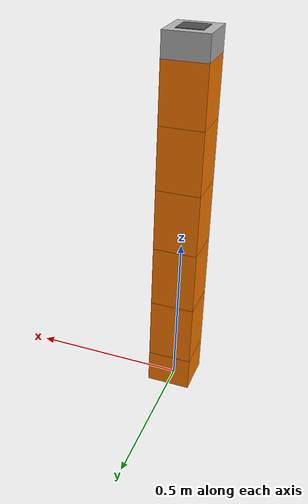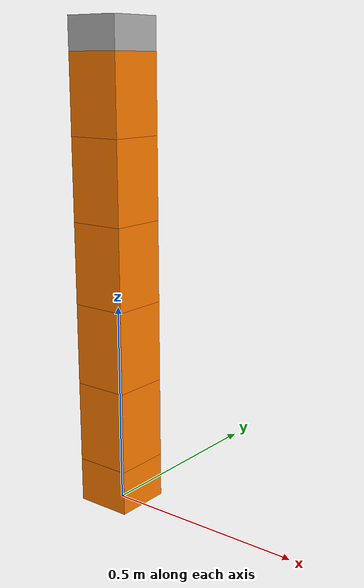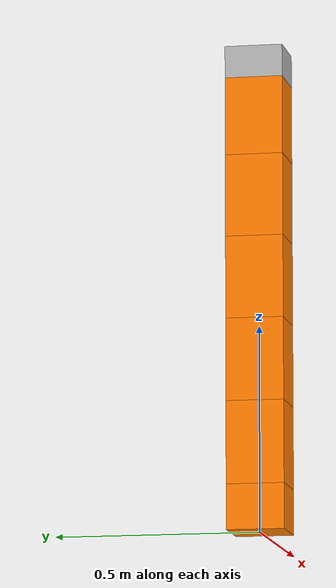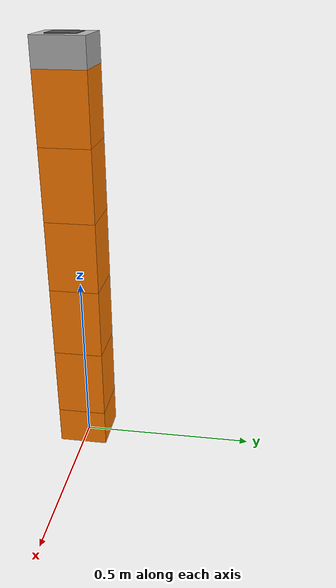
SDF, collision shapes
<?xml version="1.0" ?>
<sdf version='1.6'>
  <model name='KukaModel'>
    <link name='lwr_base_link'>
      <pose frame=''>0 0 0.0 0 -0 0</pose>
      <inertial>
        <pose frame='lwr_base_link'>0 0 0.055 0 -0 0</pose>
        <mass>2</mass>
        <inertia>
          <ixx>0.00381667</ixx>
          <ixy>0</ixy>
          <ixz>0</ixz>
          <iyy>0.0036</iyy>
          <iyz>0</iyz>
          <izz>0.00381667</izz>
        </inertia>
      </inertial>
      <collision name='lwr_base_link_collision'>
        <pose frame=''>0 0 0.055 0 -0 0</pose>
        <geometry>
          <box>
            <size>0.14 0.14 0.11</size>
          </box>
        </geometry>
        <surface>
          <contact>
            <ode/>
          </contact>
          <friction>
            <ode/>
          </friction>
        </surface>
      </collision>
      <visual name='lwr_base_link_visual'>
        <pose frame=''>0 0 0 0 0 -3.14159</pose>
        <geometry>
          <mesh>
            <scale>1 1 1</scale>
            <uri>file://KukaModel/meshes/lwr4plus/visual/base.STL</uri>
          </mesh>
        </geometry>
        <material>
          <ambient>1.0 0.487 0 1.0</ambient>
        </material>
      </visual>
      <gravity>1</gravity>
      <velocity_decay/>
      <gravity>1</gravity>
    </link>
    <joint name="fixed_to_ground" type="revolute">
        <parent>world</parent>
        <child>lwr_base_link</child>
        <axis>
          <limit>
            <lower>0</lower>
            <upper>0</upper>
          </limit>
          <xyz>0 0 1</xyz>
        </axis>
      </joint>
    <link name='lwr_1_link'>
      <pose frame=''>0 0 0.11 0 -0 0</pose>
      <inertial>
        <pose frame='lwr_1_link'>0 -0.06 0.13 0 -0 0</pose>
        <mass>2.35</mass>
        <inertia>
          <ixx>0.0160583</ixx>
          <ixy>0</ixy>
          <ixz>0</ixz>
          <iyy>0.003525</iyy>
          <iyz>0</iyz>
          <izz>0.0139433</izz>
        </inertia>
      </inertial>
      <collision name='lwr_1_link_collision'>
        <pose frame=''>0 0 0.10025 0 -0 0</pose>
        <geometry>
          <box>
            <size>0.14 0.14 0.2005</size>
          </box>
        </geometry>
        <surface>
          <contact>
            <ode/>
          </contact>
          <friction>
            <ode/>
          </friction>
        </surface>
      </collision>
      <visual name='lwr_1_link_visual'>
        <pose frame=''>0 0 -0.008 0 -0 -3.14159</pose>
        <geometry>
          <mesh>
            <scale>1 1 1</scale>
            <uri>file://KukaModel/meshes/lwr4plus/visual/link_1.STL</uri>
          </mesh>
        </geometry>
        <material>
          <ambient>1.0 0.487 0 1.0</ambient>
        </material>
      </visual>
      <gravity>1</gravity>
      <velocity_decay/>
      <gravity>1</gravity>
    </link>
    <joint name='lwr_a1_joint' type='revolute'>
      <child>lwr_1_link</child>
      <parent>lwr_base_link</parent>
      <axis>
        <xyz>0 0 1</xyz>
        <limit>
          <lower>-2.96706</lower>
          <upper>2.96706</upper>
          <effort>15</effort>
          <velocity>3.91986</velocity>
        </limit>
        <dynamics>
          <damping>2.0</damping>
          <friction>0.2</friction>
          <spring_reference>0</spring_reference>
          <spring_stiffness>0</spring_stiffness>
        </dynamics>
        <use_parent_model_frame>1</use_parent_model_frame>
      </axis>
      <physics>
        <ode>
          <implicit_spring_damper>1</implicit_spring_damper>
          <bounce>0</bounce>
          <limit>
            <erp>0.8</erp>
          </limit>
        </ode>
      </physics>
    </joint>
    <link name='lwr_2_link'>
      <pose frame=''>0 0 0.3105 0 -0 0</pose>
      <inertial>
        <pose frame='lwr_2_link'>0 0.06 0.07 0 -0 0</pose>
        <mass>2.35</mass>
        <inertia>
          <ixx>0.0160583</ixx>
          <ixy>0</ixy>
          <ixz>0</ixz>
          <iyy>0.003525</iyy>
          <iyz>0</iyz>
          <izz>0.0139433</izz>
        </inertia>
      </inertial>
      <collision name='lwr_2_link_collision'>
        <pose frame=''>0 0 0.1 0 -0 0</pose>
        <geometry>
          <box>
            <size>0.14 0.14 0.2</size>
          </box>
        </geometry>
        <surface>
          <contact>
            <ode/>
          </contact>
          <friction>
            <ode/>
          </friction>
        </surface>
      </collision>
      <visual name='lwr_2_link_visual'>
        <pose frame=''>0 0 0 0 -0 -3.14159</pose>
        <geometry>
          <mesh>
            <scale>1 1 1</scale>
            <uri>file://KukaModel/meshes/lwr4plus/visual/link_2.STL</uri>
          </mesh>
        </geometry>
        <material>
          <ambient>1.0 0.487 0 1.0</ambient>
        </material>
      </visual>
      <gravity>1</gravity>
      <velocity_decay/>
      <gravity>1</gravity>
    </link>
    <joint name='lwr_a2_joint' type='revolute'>
      <child>lwr_2_link</child>
      <parent>lwr_1_link</parent>
      <axis>
        <xyz>0 -1 0</xyz>
        <limit>
          <lower>-2.0944</lower>
          <upper>2.0944</upper>
          <effort>13</effort>
          <velocity>2.91986</velocity>
        </limit>
        <dynamics>
          <damping>2.0</damping>
          <friction>0.2</friction>
          <spring_reference>0</spring_reference>
          <spring_stiffness>0</spring_stiffness>
        </dynamics>
        <use_parent_model_frame>1</use_parent_model_frame>
      </axis>
      <physics>
        <ode>
          <implicit_spring_damper>1</implicit_spring_damper>
          <bounce>0</bounce>
          <limit>
            <erp>0.8</erp>
          </limit>
        </ode>
      </physics>
    </joint>
    <link name='lwr_3_link'>
      <pose frame=''>0 0 0.5105 0 -0 0</pose>
      <inertial>
        <pose frame='lwr_3_link'>0 0.06 0.13 0 -0 0</pose>
        <mass>2.35</mass>
        <inertia>
          <ixx>0.0160583</ixx>
          <ixy>0</ixy>
          <ixz>0</ixz>
          <iyy>0.003525</iyy>
          <iyz>0</iyz>
          <izz>0.0139433</izz>
        </inertia>
      </inertial>
      <collision name='lwr_3_link_collision'>
        <pose frame=''>0 0 0.1 0 -0 0</pose>
        <geometry>
          <box>
            <size>0.14 0.14 0.2</size>
          </box>
        </geometry>
        <surface>
          <contact>
            <ode/>
          </contact>
          <friction>
            <ode/>
          </friction>
        </surface>
      </collision>
      <visual name='lwr_3_link_visual'>
        <pose frame=''>0 0 -0.008 0 -0 -3.14159</pose>
        <geometry>
          <mesh>
            <scale>1 1 1</scale>
            <uri>file://KukaModel/meshes/lwr4plus/visual/link_3.STL</uri>
          </mesh>
        </geometry>
        <material>
          <ambient>1.0 0.487 0 1.0</ambient>
        </material>
      </visual>
      <gravity>1</gravity>
      <velocity_decay/>
      <gravity>1</gravity>
    </link>
    <joint name='lwr_e1_joint' type='revolute'>
      <child>lwr_3_link</child>
      <parent>lwr_2_link</parent>
      <axis>
        <xyz>0 0 1</xyz>
        <limit>
          <lower>-2.96706</lower>
          <upper>2.96706</upper>
          <effort>10</effort>
          <velocity>2.53402</velocity>
        </limit>
        <dynamics>
          <damping>2.0</damping>
          <friction>0.2</friction>
          <spring_reference>0</spring_reference>
          <spring_stiffness>0</spring_stiffness>
        </dynamics>
        <use_parent_model_frame>1</use_parent_model_frame>
      </axis>
      <physics>
        <ode>
          <implicit_spring_damper>1</implicit_spring_damper>
          <bounce>0</bounce>
          <limit>
            <erp>0.8</erp>
          </limit>
        </ode>
      </physics>
    </joint>
    <link name='lwr_4_link'>
      <pose frame=''>0 0 0.7105 0 -0 0</pose>
      <inertial>
        <pose frame='lwr_4_link'>0 -0.06 0.07 0 -0 0</pose>
        <mass>2.35</mass>
        <inertia>
          <ixx>0.0160583</ixx>
          <ixy>0</ixy>
          <ixz>0</ixz>
          <iyy>0.003525</iyy>
          <iyz>0</iyz>
          <izz>0.0139433</izz>
        </inertia>
      </inertial>
      <collision name='lwr_4_link_collision'>
        <pose frame=''>0 0 0.1 0 -0 0</pose>
        <geometry>
          <box>
            <size>0.14 0.14 0.2</size>
          </box>
        </geometry>
        <surface>
          <contact>
            <ode/>
          </contact>
          <friction>
            <ode/>
          </friction>
        </surface>
      </collision>
      <visual name='lwr_4_link_visual'>
        <pose frame=''>0 0 0 0 -0 -3.14159</pose>
        <geometry>
          <mesh>
            <scale>1 1 1</scale>
            <uri>file://KukaModel/meshes/lwr4plus/visual/link_4.STL</uri>
          </mesh>
        </geometry>
        <material>
          <ambient>1.0 0.487 0 1.0</ambient>
        </material>
      </visual>
      <gravity>1</gravity>
      <velocity_decay/>
      <gravity>1</gravity>
    </link>
    <joint name='lwr_a3_joint' type='revolute'>
      <child>lwr_4_link</child>
      <parent>lwr_3_link</parent>
      <axis>
        <xyz>0 -1 0</xyz>
        <limit>
          <lower>-2.0944</lower>
          <upper>2.0944</upper>
          <effort>18</effort>
          <velocity>2.23402</velocity>
        </limit>
        <dynamics>
          <damping>2.0</damping>
          <friction>0.2</friction>
          <spring_reference>0</spring_reference>
          <spring_stiffness>0</spring_stiffness>
        </dynamics>
        <use_parent_model_frame>1</use_parent_model_frame>
      </axis>
      <physics>
        <ode>
          <implicit_spring_damper>1</implicit_spring_damper>
          <bounce>0</bounce>
          <limit>
            <erp>0.8</erp>
          </limit>
        </ode>
      </physics>
    </joint>
    <link name='lwr_5_link'>
      <pose frame=''>0 0 0.9105 0 -0 0</pose>
      <inertial>
        <pose frame='lwr_5_link'>0 0 0.124 0 -0 0</pose>
        <mass>2.35</mass>
        <inertia>
          <ixx>0.0148645</ixx>
          <ixy>0</ixy>
          <ixz>0</ixz>
          <iyy>0.003525</iyy>
          <iyz>0</iyz>
          <izz>0.0127495</izz>
        </inertia>
      </inertial>
      <collision name='lwr_5_link_collision'>
        <pose frame=''>0 0 0.095 0 -0 0</pose>
        <geometry>
          <box>
            <size>0.14 0.14 0.19</size>
          </box>
        </geometry>
        <surface>
          <contact>
            <ode/>
          </contact>
          <friction>
            <ode/>
          </friction>
        </surface>
      </collision>
      <visual name='lwr_5_link_visual'>
        <pose frame=''>0 0 -0.008 0 -0 -3.14159</pose>
        <geometry>
          <mesh>
            <scale>1 1 1</scale>
            <uri>file://KukaModel/meshes/lwr4plus/visual/link_5.STL</uri>
          </mesh>
        </geometry>
        <material>
          <ambient>1.0 0.487 0 1.0</ambient>
        </material>
      </visual>
      <gravity>1</gravity>
      <velocity_decay/>
      <gravity>1</gravity>
    </link>
    <joint name='lwr_a4_joint' type='revolute'>
      <child>lwr_5_link</child>
      <parent>lwr_4_link</parent>
      <axis>
        <xyz>0 0 1</xyz>
        <limit>
          <lower>-2.96706</lower>
          <upper>2.96706</upper>
          <effort>10</effort>
          <velocity>2.56047</velocity>
        </limit>
        <dynamics>
          <damping>2.0</damping>
          <friction>0.2</friction>
          <spring_reference>0</spring_reference>
          <spring_stiffness>0</spring_stiffness>
        </dynamics>
        <use_parent_model_frame>1</use_parent_model_frame>
      </axis>
      <physics>
        <ode>
          <implicit_spring_damper>1</implicit_spring_damper>
          <bounce>0</bounce>
          <limit>
            <erp>0.8</erp>
          </limit>
        </ode>
      </physics>
    </joint>
    <link name='lwr_6_link'>
      <pose frame=''>0 0 1.1005 0 -0 0</pose>
      <inertial>
        <pose frame='lwr_6_link'>0 0 0.0625 0 -0 0</pose>
        <mass>1.1</mass>
        <inertia>
          <ixx>0.00286458</ixx>
          <ixy>0</ixy>
          <ixz>0</ixz>
          <iyy>0.00286458</iyy>
          <iyz>0</iyz>
          <izz>0.00286458</izz>
        </inertia>
      </inertial>
      <collision name='lwr_6_link_collision'>
        <pose frame=''>0 0 0.039 0 -0 0</pose>
        <geometry>
          <box>
            <size>0.14 0.14 0.078</size>
          </box>
        </geometry>
        <surface>
          <contact>
            <ode/>
          </contact>
          <friction>
            <ode/>
          </friction>
        </surface>
      </collision>
      <visual name='lwr_6_link_visual'>
        <pose frame=''>0 0 0 0 -0 -3.14159</pose>
        <geometry>
          <mesh>
            <scale>1 1 1</scale>
            <uri>file://KukaModel/meshes/lwr4plus/visual/link_6.STL</uri>
          </mesh>
        </geometry>
        <material>
          <ambient>0.7 0.7 0.7 1.0</ambient>
        </material>
      </visual>
      <gravity>1</gravity>
      <velocity_decay/>
      <gravity>1</gravity>
    </link>
    <joint name='lwr_a5_joint' type='revolute'>
      <child>lwr_6_link</child>
      <parent>lwr_5_link</parent>
      <axis>
        <xyz>0 -1 0</xyz>
        <limit>
          <lower>-2.0944</lower>
          <upper>2.0944</upper>
          <effort>8</effort>
          <velocity>3.21141</velocity>
        </limit>
        <dynamics>
          <damping>2.0</damping>
          <friction>0.2</friction>
          <spring_reference>0</spring_reference>
          <spring_stiffness>0</spring_stiffness>
        </dynamics>
        <use_parent_model_frame>1</use_parent_model_frame>
      </axis>
      <physics>
        <ode>
          <implicit_spring_damper>1</implicit_spring_damper>
          <bounce>0</bounce>
          <limit>
            <erp>0.8</erp>
          </limit>
        </ode>
      </physics>
    </joint>
    <link name='lwr_7_link'>
      <pose frame=''>0 0 1.1785 0 -0 0</pose>
      <inertial>
        <pose frame='lwr_7_link'>0 0 0 0 -0 0</pose>
        <mass>0.25</mass>
        <inertia>
          <ixx>0.000416667</ixx>
          <ixy>0</ixy>
          <ixz>0</ixz>
          <iyy>0.000416667</iyy>
          <iyz>0</iyz>
          <izz>0.000416667</izz>
        </inertia>
      </inertial>
      <collision name='lwr_7_link_collision'>
        <pose frame=''>0 0 0 0 -0 0</pose>
        <geometry>
          <box>
            <size>0.08 0.08 0.004</size>
          </box>
        </geometry>
        <surface>
          <contact>
            <ode/>
          </contact>
          <friction>
            <ode/>
          </friction>
        </surface>
      </collision>
      <visual name='lwr_7_link_visual'>
        <pose frame=''>0 0 0 0 -0 -3.14159</pose>
        <geometry>
          <mesh>
            <scale>1 1 1</scale>
            <uri>file://KukaModel/meshes/lwr4plus/visual/link_7.STL</uri>
          </mesh>
        </geometry>
        <material>
          <ambient>0.3 0.3 0.3 1.0</ambient>
        </material>
      </visual>
      <gravity>1</gravity>
      <velocity_decay/>
      <gravity>1</gravity>
    </link>
    <joint name='lwr_a6_joint' type='revolute'>
      <child>lwr_7_link</child>
      <parent>lwr_6_link</parent>
      <axis>
        <xyz>0 0 1</xyz>
        <limit>
          <lower>-2.96706</lower>
          <upper>2.96706</upper>
          <effort>2</effort>
          <velocity>2.21141</velocity>
        </limit>
        <dynamics>
          <damping>10.0</damping>
          <friction>10.0</friction>
          <spring_reference>0</spring_reference>
          <spring_stiffness>0</spring_stiffness>
        </dynamics>
        <use_parent_model_frame>1</use_parent_model_frame>
      </axis>
      <physics>
        <ode>
          <implicit_spring_damper>1</implicit_spring_damper>
          <bounce>0</bounce>
          <limit>
            <erp>0.8</erp>
          </limit>
        </ode>
      </physics>
    </joint>
    <static>0</static>
  </model>
</sdf>
